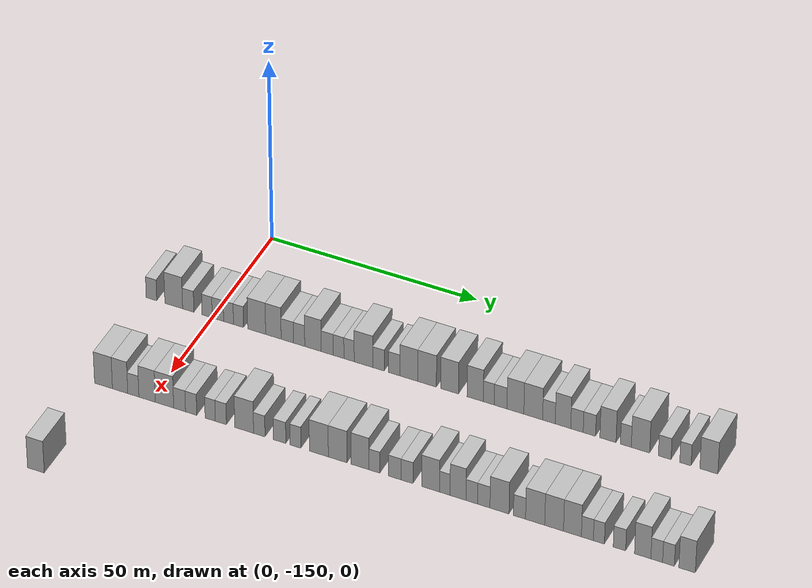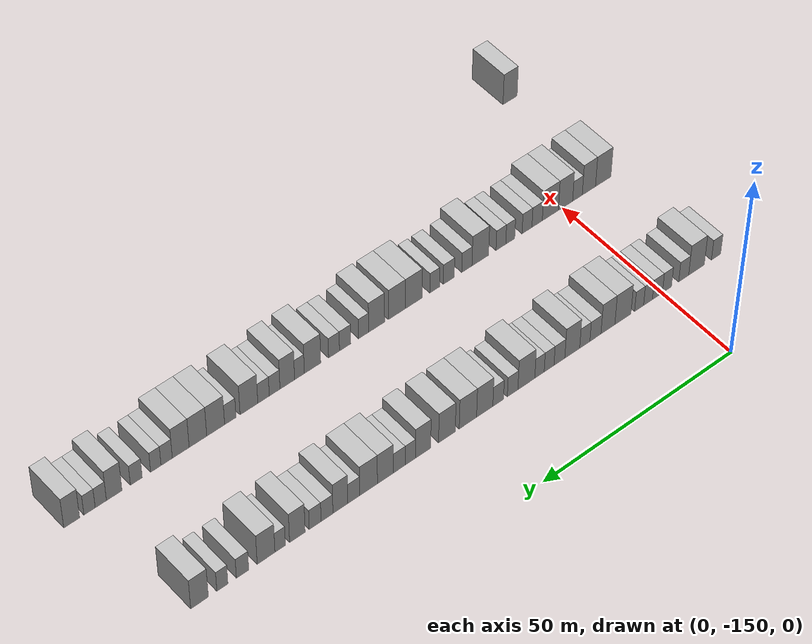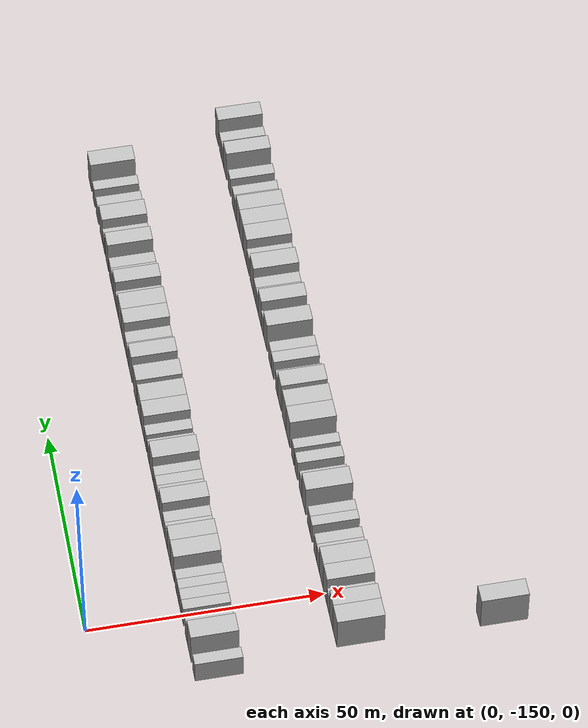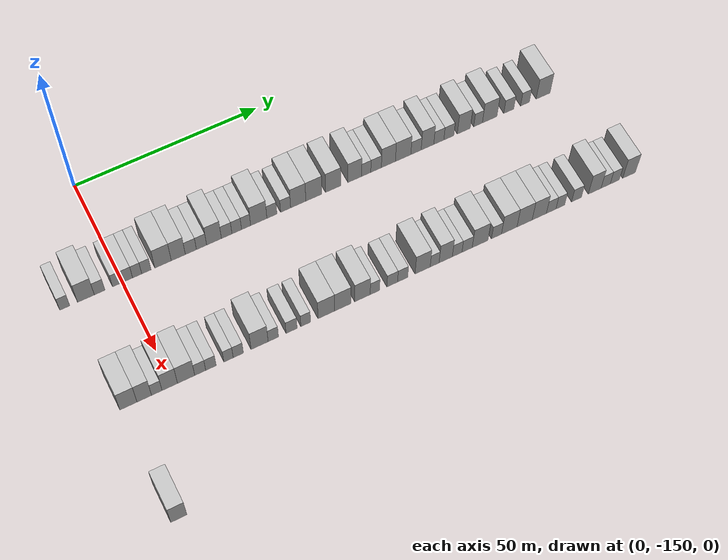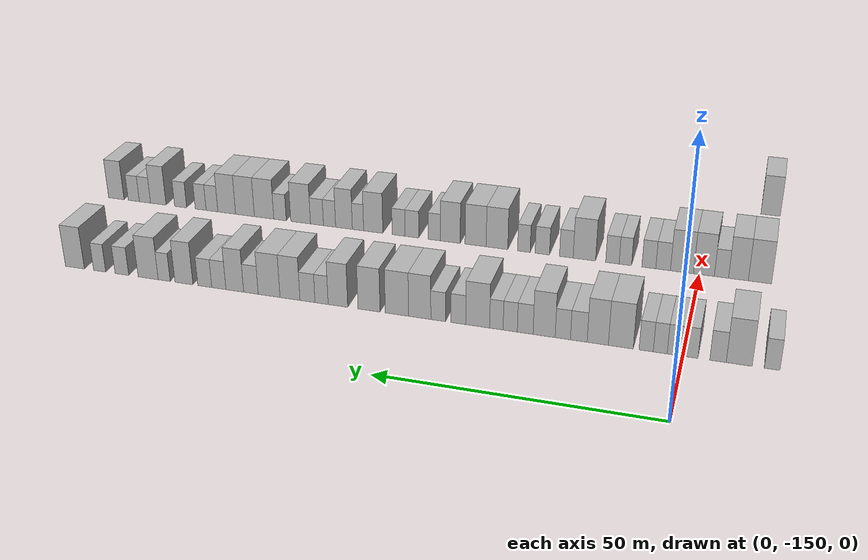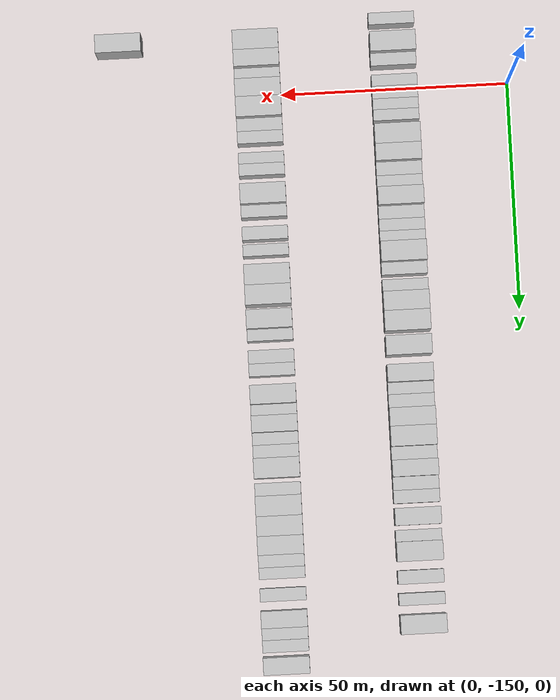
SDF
<sdf version="1.6">
 <world name="default">
  <model name="building_75">
   <static>1</static>
   <pose>25.0000 -164.9613 0 0.000000 0.000000 0.000000</pose>
   <link name="link">
    <pose>0 0 3.00 0 0 0</pose>
    <collision name="collision"><geometry><box><size>10.0000 2.5970 6.0000</size></box></geometry></collision>
    <visual name="visual">
     <cast_shadows>0</cast_shadows>
     <geometry><box><size>10.0000 2.5970 6.0000</size></box></geometry>
     <material>
      <script>
       <uri>model://HANNAS_wall/materials/scripts</uri>
       <uri>model://HANNAS_wall/materials/textures</uri>
       <name>vrc/HANNAS_wall</name>
      </script>
     </material>
    </visual>
   </link>
  </model>
  <model name="building_76">
   <static>1</static>
   <pose>25.0000 -159.4834 0 0.000000 0.000000 0.000000</pose>
   <link name="link">
    <pose>0 0 4.50 0 0 0</pose>
    <collision name="collision"><geometry><box><size>10.0000 4.3589 9.0000</size></box></geometry></collision>
    <visual name="visual">
     <cast_shadows>0</cast_shadows>
     <geometry><box><size>10.0000 4.3589 9.0000</size></box></geometry>
     <material>
      <script>
       <uri>model://HANNAS_wall/materials/scripts</uri>
       <uri>model://HANNAS_wall/materials/textures</uri>
       <name>vrc/HANNAS_wall</name>
      </script>
     </material>
    </visual>
   </link>
  </model>
  <model name="building_77">
   <static>1</static>
   <pose>25.0000 -155.9156 0 0.000000 0.000000 0.000000</pose>
   <link name="link">
    <pose>0 0 3.00 0 0 0</pose>
    <collision name="collision"><geometry><box><size>10.0000 2.7766 6.0000</size></box></geometry></collision>
    <visual name="visual">
     <cast_shadows>0</cast_shadows>
     <geometry><box><size>10.0000 2.7766 6.0000</size></box></geometry>
     <material>
      <script>
       <uri>model://HANNAS_wall/materials/scripts</uri>
       <uri>model://HANNAS_wall/materials/textures</uri>
       <name>vrc/HANNAS_wall</name>
      </script>
     </material>
    </visual>
   </link>
  </model>
  <model name="building_78">
   <static>1</static>
   <pose>25.0000 -151.2838 0 0.000000 0.000000 0.000000</pose>
   <link name="link">
    <pose>0 0 3.00 0 0 0</pose>
    <collision name="collision"><geometry><box><size>10.0000 2.4869 6.0000</size></box></geometry></collision>
    <visual name="visual">
     <cast_shadows>0</cast_shadows>
     <geometry><box><size>10.0000 2.4869 6.0000</size></box></geometry>
     <material>
      <script>
       <uri>model://HANNAS_wall/materials/scripts</uri>
       <uri>model://HANNAS_wall/materials/textures</uri>
       <name>vrc/HANNAS_wall</name>
      </script>
     </material>
    </visual>
   </link>
  </model>
  <model name="building_79">
   <static>1</static>
   <pose>25.0000 -148.6488 0 0.000000 0.000000 0.000000</pose>
   <link name="link">
    <pose>0 0 3.00 0 0 0</pose>
    <collision name="collision"><geometry><box><size>10.0000 2.7832 6.0000</size></box></geometry></collision>
    <visual name="visual">
     <cast_shadows>0</cast_shadows>
     <geometry><box><size>10.0000 2.7832 6.0000</size></box></geometry>
     <material>
      <script>
       <uri>model://HANNAS_wall/materials/scripts</uri>
       <uri>model://HANNAS_wall/materials/textures</uri>
       <name>vrc/HANNAS_wall</name>
      </script>
     </material>
    </visual>
   </link>
  </model>
  <model name="building_80">
   <static>1</static>
   <pose>25.0000 -146.0570 0 0.000000 0.000000 0.000000</pose>
   <link name="link">
    <pose>0 0 3.00 0 0 0</pose>
    <collision name="collision"><geometry><box><size>10.0000 2.4005 6.0000</size></box></geometry></collision>
    <visual name="visual">
     <cast_shadows>0</cast_shadows>
     <geometry><box><size>10.0000 2.4005 6.0000</size></box></geometry>
     <material>
      <script>
       <uri>model://HANNAS_wall/materials/scripts</uri>
       <uri>model://HANNAS_wall/materials/textures</uri>
       <name>vrc/HANNAS_wall</name>
      </script>
     </material>
    </visual>
   </link>
  </model>
  <model name="building_81">
   <static>1</static>
   <pose>25.0000 -143.6238 0 0.000000 0.000000 0.000000</pose>
   <link name="link">
    <pose>0 0 3.00 0 0 0</pose>
    <collision name="collision"><geometry><box><size>10.0000 2.4659 6.0000</size></box></geometry></collision>
    <visual name="visual">
     <cast_shadows>0</cast_shadows>
     <geometry><box><size>10.0000 2.4659 6.0000</size></box></geometry>
     <material>
      <script>
       <uri>model://HANNAS_wall/materials/scripts</uri>
       <uri>model://HANNAS_wall/materials/textures</uri>
       <name>vrc/HANNAS_wall</name>
      </script>
     </material>
    </visual>
   </link>
  </model>
  <model name="building_82">
   <static>1</static>
   <pose>25.0000 -139.2061 0 0.000000 0.000000 0.000000</pose>
   <link name="link">
    <pose>0 0 4.50 0 0 0</pose>
    <collision name="collision"><geometry><box><size>10.0000 4.3693 9.0000</size></box></geometry></collision>
    <visual name="visual">
     <cast_shadows>0</cast_shadows>
     <geometry><box><size>10.0000 4.3693 9.0000</size></box></geometry>
     <material>
      <script>
       <uri>model://HANNAS_wall/materials/scripts</uri>
       <uri>model://HANNAS_wall/materials/textures</uri>
       <name>vrc/HANNAS_wall</name>
      </script>
     </material>
    </visual>
   </link>
  </model>
  <model name="building_83">
   <static>1</static>
   <pose>25.0000 -135.1441 0 0.000000 0.000000 0.000000</pose>
   <link name="link">
    <pose>0 0 4.50 0 0 0</pose>
    <collision name="collision"><geometry><box><size>10.0000 3.7548 9.0000</size></box></geometry></collision>
    <visual name="visual">
     <cast_shadows>0</cast_shadows>
     <geometry><box><size>10.0000 3.7548 9.0000</size></box></geometry>
     <material>
      <script>
       <uri>model://HANNAS_wall/materials/scripts</uri>
       <uri>model://HANNAS_wall/materials/textures</uri>
       <name>vrc/HANNAS_wall</name>
      </script>
     </material>
    </visual>
   </link>
  </model>
  <model name="building_84">
   <static>1</static>
   <pose>25.0000 -131.7835 0 0.000000 0.000000 0.000000</pose>
   <link name="link">
    <pose>0 0 3.00 0 0 0</pose>
    <collision name="collision"><geometry><box><size>10.0000 2.9663 6.0000</size></box></geometry></collision>
    <visual name="visual">
     <cast_shadows>0</cast_shadows>
     <geometry><box><size>10.0000 2.9663 6.0000</size></box></geometry>
     <material>
      <script>
       <uri>model://HANNAS_wall/materials/scripts</uri>
       <uri>model://HANNAS_wall/materials/textures</uri>
       <name>vrc/HANNAS_wall</name>
      </script>
     </material>
    </visual>
   </link>
  </model>
  <model name="building_85">
   <static>1</static>
   <pose>25.0000 -128.9321 0 0.000000 0.000000 0.000000</pose>
   <link name="link">
    <pose>0 0 3.00 0 0 0</pose>
    <collision name="collision"><geometry><box><size>10.0000 2.7366 6.0000</size></box></geometry></collision>
    <visual name="visual">
     <cast_shadows>0</cast_shadows>
     <geometry><box><size>10.0000 2.7366 6.0000</size></box></geometry>
     <material>
      <script>
       <uri>model://HANNAS_wall/materials/scripts</uri>
       <uri>model://HANNAS_wall/materials/textures</uri>
       <name>vrc/HANNAS_wall</name>
      </script>
     </material>
    </visual>
   </link>
  </model>
  <model name="building_86">
   <static>1</static>
   <pose>25.0000 -125.5755 0 0.000000 0.000000 0.000000</pose>
   <link name="link">
    <pose>0 0 4.50 0 0 0</pose>
    <collision name="collision"><geometry><box><size>10.0000 3.9767 9.0000</size></box></geometry></collision>
    <visual name="visual">
     <cast_shadows>0</cast_shadows>
     <geometry><box><size>10.0000 3.9767 9.0000</size></box></geometry>
     <material>
      <script>
       <uri>model://HANNAS_wall/materials/scripts</uri>
       <uri>model://HANNAS_wall/materials/textures</uri>
       <name>vrc/HANNAS_wall</name>
      </script>
     </material>
    </visual>
   </link>
  </model>
  <model name="building_87">
   <static>1</static>
   <pose>25.0000 -122.1557 0 0.000000 0.000000 0.000000</pose>
   <link name="link">
    <pose>0 0 3.00 0 0 0</pose>
    <collision name="collision"><geometry><box><size>10.0000 2.8629 6.0000</size></box></geometry></collision>
    <visual name="visual">
     <cast_shadows>0</cast_shadows>
     <geometry><box><size>10.0000 2.8629 6.0000</size></box></geometry>
     <material>
      <script>
       <uri>model://HANNAS_wall/materials/scripts</uri>
       <uri>model://HANNAS_wall/materials/textures</uri>
       <name>vrc/HANNAS_wall</name>
      </script>
     </material>
    </visual>
   </link>
  </model>
  <model name="building_88">
   <static>1</static>
   <pose>25.0000 -119.4282 0 0.000000 0.000000 0.000000</pose>
   <link name="link">
    <pose>0 0 3.00 0 0 0</pose>
    <collision name="collision"><geometry><box><size>10.0000 2.5920 6.0000</size></box></geometry></collision>
    <visual name="visual">
     <cast_shadows>0</cast_shadows>
     <geometry><box><size>10.0000 2.5920 6.0000</size></box></geometry>
     <material>
      <script>
       <uri>model://HANNAS_wall/materials/scripts</uri>
       <uri>model://HANNAS_wall/materials/textures</uri>
       <name>vrc/HANNAS_wall</name>
      </script>
     </material>
    </visual>
   </link>
  </model>
  <model name="building_89">
   <static>1</static>
   <pose>25.0000 -116.8933 0 0.000000 0.000000 0.000000</pose>
   <link name="link">
    <pose>0 0 3.00 0 0 0</pose>
    <collision name="collision"><geometry><box><size>10.0000 2.4778 6.0000</size></box></geometry></collision>
    <visual name="visual">
     <cast_shadows>0</cast_shadows>
     <geometry><box><size>10.0000 2.4778 6.0000</size></box></geometry>
     <material>
      <script>
       <uri>model://HANNAS_wall/materials/scripts</uri>
       <uri>model://HANNAS_wall/materials/textures</uri>
       <name>vrc/HANNAS_wall</name>
      </script>
     </material>
    </visual>
   </link>
  </model>
  <model name="building_90">
   <static>1</static>
   <pose>25.0000 -113.4386 0 0.000000 0.000000 0.000000</pose>
   <link name="link">
    <pose>0 0 4.50 0 0 0</pose>
    <collision name="collision"><geometry><box><size>10.0000 4.4316 9.0000</size></box></geometry></collision>
    <visual name="visual">
     <cast_shadows>0</cast_shadows>
     <geometry><box><size>10.0000 4.4316 9.0000</size></box></geometry>
     <material>
      <script>
       <uri>model://HANNAS_wall/materials/scripts</uri>
       <uri>model://HANNAS_wall/materials/textures</uri>
       <name>vrc/HANNAS_wall</name>
      </script>
     </material>
    </visual>
   </link>
  </model>
  <model name="building_91">
   <static>1</static>
   <pose>25.0000 -109.8458 0 0.000000 0.000000 0.000000</pose>
   <link name="link">
    <pose>0 0 3.00 0 0 0</pose>
    <collision name="collision"><geometry><box><size>10.0000 2.7541 6.0000</size></box></geometry></collision>
    <visual name="visual">
     <cast_shadows>0</cast_shadows>
     <geometry><box><size>10.0000 2.7541 6.0000</size></box></geometry>
     <material>
      <script>
       <uri>model://HANNAS_wall/materials/scripts</uri>
       <uri>model://HANNAS_wall/materials/textures</uri>
       <name>vrc/HANNAS_wall</name>
      </script>
     </material>
    </visual>
   </link>
  </model>
  <model name="building_92">
   <static>1</static>
   <pose>25.0000 -106.0870 0 0.000000 0.000000 0.000000</pose>
   <link name="link">
    <pose>0 0 3.00 0 0 0</pose>
    <collision name="collision"><geometry><box><size>10.0000 2.7636 6.0000</size></box></geometry></collision>
    <visual name="visual">
     <cast_shadows>0</cast_shadows>
     <geometry><box><size>10.0000 2.7636 6.0000</size></box></geometry>
     <material>
      <script>
       <uri>model://HANNAS_wall/materials/scripts</uri>
       <uri>model://HANNAS_wall/materials/textures</uri>
       <name>vrc/HANNAS_wall</name>
      </script>
     </material>
    </visual>
   </link>
  </model>
  <model name="building_93">
   <static>1</static>
   <pose>25.0000 -102.6037 0 0.000000 0.000000 0.000000</pose>
   <link name="link">
    <pose>0 0 4.50 0 0 0</pose>
    <collision name="collision"><geometry><box><size>10.0000 4.2029 9.0000</size></box></geometry></collision>
    <visual name="visual">
     <cast_shadows>0</cast_shadows>
     <geometry><box><size>10.0000 4.2029 9.0000</size></box></geometry>
     <material>
      <script>
       <uri>model://HANNAS_wall/materials/scripts</uri>
       <uri>model://HANNAS_wall/materials/textures</uri>
       <name>vrc/HANNAS_wall</name>
      </script>
     </material>
    </visual>
   </link>
  </model>
  <model name="building_94">
   <static>1</static>
   <pose>25.0000 -98.2741 0 0.000000 0.000000 0.000000</pose>
   <link name="link">
    <pose>0 0 4.50 0 0 0</pose>
    <collision name="collision"><geometry><box><size>10.0000 4.4564 9.0000</size></box></geometry></collision>
    <visual name="visual">
     <cast_shadows>0</cast_shadows>
     <geometry><box><size>10.0000 4.4564 9.0000</size></box></geometry>
     <material>
      <script>
       <uri>model://HANNAS_wall/materials/scripts</uri>
       <uri>model://HANNAS_wall/materials/textures</uri>
       <name>vrc/HANNAS_wall</name>
      </script>
     </material>
    </visual>
   </link>
  </model>
  <model name="building_95">
   <static>1</static>
   <pose>25.0000 -92.9172 0 0.000000 0.000000 0.000000</pose>
   <link name="link">
    <pose>0 0 4.50 0 0 0</pose>
    <collision name="collision"><geometry><box><size>10.0000 4.2573 9.0000</size></box></geometry></collision>
    <visual name="visual">
     <cast_shadows>0</cast_shadows>
     <geometry><box><size>10.0000 4.2573 9.0000</size></box></geometry>
     <material>
      <script>
       <uri>model://HANNAS_wall/materials/scripts</uri>
       <uri>model://HANNAS_wall/materials/textures</uri>
       <name>vrc/HANNAS_wall</name>
      </script>
     </material>
    </visual>
   </link>
  </model>
  <model name="building_96">
   <static>1</static>
   <pose>25.0000 -86.8707 0 0.000000 0.000000 0.000000</pose>
   <link name="link">
    <pose>0 0 4.50 0 0 0</pose>
    <collision name="collision"><geometry><box><size>10.0000 3.8357 9.0000</size></box></geometry></collision>
    <visual name="visual">
     <cast_shadows>0</cast_shadows>
     <geometry><box><size>10.0000 3.8357 9.0000</size></box></geometry>
     <material>
      <script>
       <uri>model://HANNAS_wall/materials/scripts</uri>
       <uri>model://HANNAS_wall/materials/textures</uri>
       <name>vrc/HANNAS_wall</name>
      </script>
     </material>
    </visual>
   </link>
  </model>
  <model name="building_97">
   <static>1</static>
   <pose>25.0000 -83.6603 0 0.000000 0.000000 0.000000</pose>
   <link name="link">
    <pose>0 0 3.00 0 0 0</pose>
    <collision name="collision"><geometry><box><size>10.0000 2.5851 6.0000</size></box></geometry></collision>
    <visual name="visual">
     <cast_shadows>0</cast_shadows>
     <geometry><box><size>10.0000 2.5851 6.0000</size></box></geometry>
     <material>
      <script>
       <uri>model://HANNAS_wall/materials/scripts</uri>
       <uri>model://HANNAS_wall/materials/textures</uri>
       <name>vrc/HANNAS_wall</name>
      </script>
     </material>
    </visual>
   </link>
  </model>
  <model name="building_98">
   <static>1</static>
   <pose>25.0000 -80.8794 0 0.000000 0.000000 0.000000</pose>
   <link name="link">
    <pose>0 0 3.00 0 0 0</pose>
    <collision name="collision"><geometry><box><size>10.0000 2.9766 6.0000</size></box></geometry></collision>
    <visual name="visual">
     <cast_shadows>0</cast_shadows>
     <geometry><box><size>10.0000 2.9766 6.0000</size></box></geometry>
     <material>
      <script>
       <uri>model://HANNAS_wall/materials/scripts</uri>
       <uri>model://HANNAS_wall/materials/textures</uri>
       <name>vrc/HANNAS_wall</name>
      </script>
     </material>
    </visual>
   </link>
  </model>
  <model name="building_99">
   <static>1</static>
   <pose>25.0000 -77.4008 0 0.000000 0.000000 0.000000</pose>
   <link name="link">
    <pose>0 0 4.50 0 0 0</pose>
    <collision name="collision"><geometry><box><size>10.0000 3.9807 9.0000</size></box></geometry></collision>
    <visual name="visual">
     <cast_shadows>0</cast_shadows>
     <geometry><box><size>10.0000 3.9807 9.0000</size></box></geometry>
     <material>
      <script>
       <uri>model://HANNAS_wall/materials/scripts</uri>
       <uri>model://HANNAS_wall/materials/textures</uri>
       <name>vrc/HANNAS_wall</name>
      </script>
     </material>
    </visual>
   </link>
  </model>
  <model name="building_100">
   <static>1</static>
   <pose>25.0000 -73.2152 0 0.000000 0.000000 0.000000</pose>
   <link name="link">
    <pose>0 0 4.50 0 0 0</pose>
    <collision name="collision"><geometry><box><size>10.0000 4.3904 9.0000</size></box></geometry></collision>
    <visual name="visual">
     <cast_shadows>0</cast_shadows>
     <geometry><box><size>10.0000 4.3904 9.0000</size></box></geometry>
     <material>
      <script>
       <uri>model://HANNAS_wall/materials/scripts</uri>
       <uri>model://HANNAS_wall/materials/textures</uri>
       <name>vrc/HANNAS_wall</name>
      </script>
     </material>
    </visual>
   </link>
  </model>
  <model name="building_101">
   <static>1</static>
   <pose>25.0000 -69.5446 0 0.000000 0.000000 0.000000</pose>
   <link name="link">
    <pose>0 0 3.00 0 0 0</pose>
    <collision name="collision"><geometry><box><size>10.0000 2.9508 6.0000</size></box></geometry></collision>
    <visual name="visual">
     <cast_shadows>0</cast_shadows>
     <geometry><box><size>10.0000 2.9508 6.0000</size></box></geometry>
     <material>
      <script>
       <uri>model://HANNAS_wall/materials/scripts</uri>
       <uri>model://HANNAS_wall/materials/textures</uri>
       <name>vrc/HANNAS_wall</name>
      </script>
     </material>
    </visual>
   </link>
  </model>
  <model name="building_102">
   <static>1</static>
   <pose>25.0000 -66.2577 0 0.000000 0.000000 0.000000</pose>
   <link name="link">
    <pose>0 0 4.50 0 0 0</pose>
    <collision name="collision"><geometry><box><size>10.0000 3.6230 9.0000</size></box></geometry></collision>
    <visual name="visual">
     <cast_shadows>0</cast_shadows>
     <geometry><box><size>10.0000 3.6230 9.0000</size></box></geometry>
     <material>
      <script>
       <uri>model://HANNAS_wall/materials/scripts</uri>
       <uri>model://HANNAS_wall/materials/textures</uri>
       <name>vrc/HANNAS_wall</name>
      </script>
     </material>
    </visual>
   </link>
  </model>
  <model name="building_103">
   <static>1</static>
   <pose>25.0000 -62.9959 0 0.000000 0.000000 0.000000</pose>
   <link name="link">
    <pose>0 0 3.00 0 0 0</pose>
    <collision name="collision"><geometry><box><size>10.0000 2.9005 6.0000</size></box></geometry></collision>
    <visual name="visual">
     <cast_shadows>0</cast_shadows>
     <geometry><box><size>10.0000 2.9005 6.0000</size></box></geometry>
     <material>
      <script>
       <uri>model://HANNAS_wall/materials/scripts</uri>
       <uri>model://HANNAS_wall/materials/textures</uri>
       <name>vrc/HANNAS_wall</name>
      </script>
     </material>
    </visual>
   </link>
  </model>
  <model name="building_104">
   <static>1</static>
   <pose>25.0000 -60.1058 0 0.000000 0.000000 0.000000</pose>
   <link name="link">
    <pose>0 0 3.00 0 0 0</pose>
    <collision name="collision"><geometry><box><size>10.0000 2.8798 6.0000</size></box></geometry></collision>
    <visual name="visual">
     <cast_shadows>0</cast_shadows>
     <geometry><box><size>10.0000 2.8798 6.0000</size></box></geometry>
     <material>
      <script>
       <uri>model://HANNAS_wall/materials/scripts</uri>
       <uri>model://HANNAS_wall/materials/textures</uri>
       <name>vrc/HANNAS_wall</name>
      </script>
     </material>
    </visual>
   </link>
  </model>
  <model name="building_105">
   <static>1</static>
   <pose>25.0000 -55.7916 0 0.000000 0.000000 0.000000</pose>
   <link name="link">
    <pose>0 0 4.50 0 0 0</pose>
    <collision name="collision"><geometry><box><size>10.0000 3.7487 9.0000</size></box></geometry></collision>
    <visual name="visual">
     <cast_shadows>0</cast_shadows>
     <geometry><box><size>10.0000 3.7487 9.0000</size></box></geometry>
     <material>
      <script>
       <uri>model://HANNAS_wall/materials/scripts</uri>
       <uri>model://HANNAS_wall/materials/textures</uri>
       <name>vrc/HANNAS_wall</name>
      </script>
     </material>
    </visual>
   </link>
  </model>
  <model name="building_106">
   <static>1</static>
   <pose>25.0000 -51.6585 0 0.000000 0.000000 0.000000</pose>
   <link name="link">
    <pose>0 0 3.00 0 0 0</pose>
    <collision name="collision"><geometry><box><size>10.0000 2.5175 6.0000</size></box></geometry></collision>
    <visual name="visual">
     <cast_shadows>0</cast_shadows>
     <geometry><box><size>10.0000 2.5175 6.0000</size></box></geometry>
     <material>
      <script>
       <uri>model://HANNAS_wall/materials/scripts</uri>
       <uri>model://HANNAS_wall/materials/textures</uri>
       <name>vrc/HANNAS_wall</name>
      </script>
     </material>
    </visual>
   </link>
  </model>
  <model name="building_107">
   <static>1</static>
   <pose>25.0000 -48.2748 0 0.000000 0.000000 0.000000</pose>
   <link name="link">
    <pose>0 0 4.50 0 0 0</pose>
    <collision name="collision"><geometry><box><size>10.0000 4.2500 9.0000</size></box></geometry></collision>
    <visual name="visual">
     <cast_shadows>0</cast_shadows>
     <geometry><box><size>10.0000 4.2500 9.0000</size></box></geometry>
     <material>
      <script>
       <uri>model://HANNAS_wall/materials/scripts</uri>
       <uri>model://HANNAS_wall/materials/textures</uri>
       <name>vrc/HANNAS_wall</name>
      </script>
     </material>
    </visual>
   </link>
  </model>
  <model name="building_108">
   <static>1</static>
   <pose>25.0000 -42.6852 0 0.000000 0.000000 0.000000</pose>
   <link name="link">
    <pose>0 0 3.00 0 0 0</pose>
    <collision name="collision"><geometry><box><size>10.0000 2.9294 6.0000</size></box></geometry></collision>
    <visual name="visual">
     <cast_shadows>0</cast_shadows>
     <geometry><box><size>10.0000 2.9294 6.0000</size></box></geometry>
     <material>
      <script>
       <uri>model://HANNAS_wall/materials/scripts</uri>
       <uri>model://HANNAS_wall/materials/textures</uri>
       <name>vrc/HANNAS_wall</name>
      </script>
     </material>
    </visual>
   </link>
  </model>
  <model name="building_109">
   <static>1</static>
   <pose>25.0000 -37.9173 0 0.000000 0.000000 0.000000</pose>
   <link name="link">
    <pose>0 0 3.00 0 0 0</pose>
    <collision name="collision"><geometry><box><size>10.0000 2.6063 6.0000</size></box></geometry></collision>
    <visual name="visual">
     <cast_shadows>0</cast_shadows>
     <geometry><box><size>10.0000 2.6063 6.0000</size></box></geometry>
     <material>
      <script>
       <uri>model://HANNAS_wall/materials/scripts</uri>
       <uri>model://HANNAS_wall/materials/textures</uri>
       <name>vrc/HANNAS_wall</name>
      </script>
     </material>
    </visual>
   </link>
  </model>
  <model name="building_110">
   <static>1</static>
   <pose>25.0000 -32.5534 0 0.000000 0.000000 0.000000</pose>
   <link name="link">
    <pose>0 0 4.50 0 0 0</pose>
    <collision name="collision"><geometry><box><size>10.0000 4.1215 9.0000</size></box></geometry></collision>
    <visual name="visual">
     <cast_shadows>0</cast_shadows>
     <geometry><box><size>10.0000 4.1215 9.0000</size></box></geometry>
     <material>
      <script>
       <uri>model://HANNAS_wall/materials/scripts</uri>
       <uri>model://HANNAS_wall/materials/textures</uri>
       <name>vrc/HANNAS_wall</name>
      </script>
     </material>
    </visual>
   </link>
  </model>
  <model name="building_310">
   <static>1</static>
   <pose>55.0000 -161.3412 0 0.000000 0.000000 0.000000</pose>
   <link name="link">
    <pose>0 0 4.50 0 0 0</pose>
    <collision name="collision"><geometry><box><size>10.0000 4.3286 9.0000</size></box></geometry></collision>
    <visual name="visual">
     <cast_shadows>0</cast_shadows>
     <geometry><box><size>10.0000 4.3286 9.0000</size></box></geometry>
     <material>
      <script>
       <uri>model://HANNAS_wall/materials/scripts</uri>
       <uri>model://HANNAS_wall/materials/textures</uri>
       <name>vrc/HANNAS_wall</name>
      </script>
     </material>
    </visual>
   </link>
  </model>
  <model name="building_311">
   <static>1</static>
   <pose>55.0000 -157.3208 0 0.000000 0.000000 0.000000</pose>
   <link name="link">
    <pose>0 0 4.50 0 0 0</pose>
    <collision name="collision"><geometry><box><size>10.0000 3.7121 9.0000</size></box></geometry></collision>
    <visual name="visual">
     <cast_shadows>0</cast_shadows>
     <geometry><box><size>10.0000 3.7121 9.0000</size></box></geometry>
     <material>
      <script>
       <uri>model://HANNAS_wall/materials/scripts</uri>
       <uri>model://HANNAS_wall/materials/textures</uri>
       <name>vrc/HANNAS_wall</name>
      </script>
     </material>
    </visual>
   </link>
  </model>
  <model name="building_312">
   <static>1</static>
   <pose>55.0000 -154.1229 0 0.000000 0.000000 0.000000</pose>
   <link name="link">
    <pose>0 0 3.00 0 0 0</pose>
    <collision name="collision"><geometry><box><size>10.0000 2.6838 6.0000</size></box></geometry></collision>
    <visual name="visual">
     <cast_shadows>0</cast_shadows>
     <geometry><box><size>10.0000 2.6838 6.0000</size></box></geometry>
     <material>
      <script>
       <uri>model://HANNAS_wall/materials/scripts</uri>
       <uri>model://HANNAS_wall/materials/textures</uri>
       <name>vrc/HANNAS_wall</name>
      </script>
     </material>
    </visual>
   </link>
  </model>
  <model name="building_313">
   <static>1</static>
   <pose>55.0000 -150.8002 0 0.000000 0.000000 0.000000</pose>
   <link name="link">
    <pose>0 0 4.50 0 0 0</pose>
    <collision name="collision"><geometry><box><size>10.0000 3.9616 9.0000</size></box></geometry></collision>
    <visual name="visual">
     <cast_shadows>0</cast_shadows>
     <geometry><box><size>10.0000 3.9616 9.0000</size></box></geometry>
     <material>
      <script>
       <uri>model://HANNAS_wall/materials/scripts</uri>
       <uri>model://HANNAS_wall/materials/textures</uri>
       <name>vrc/HANNAS_wall</name>
      </script>
     </material>
    </visual>
   </link>
  </model>
  <model name="building_314">
   <static>1</static>
   <pose>55.0000 -146.6014 0 0.000000 0.000000 0.000000</pose>
   <link name="link">
    <pose>0 0 4.50 0 0 0</pose>
    <collision name="collision"><geometry><box><size>10.0000 4.4361 9.0000</size></box></geometry></collision>
    <visual name="visual">
     <cast_shadows>0</cast_shadows>
     <geometry><box><size>10.0000 4.4361 9.0000</size></box></geometry>
     <material>
      <script>
       <uri>model://HANNAS_wall/materials/scripts</uri>
       <uri>model://HANNAS_wall/materials/textures</uri>
       <name>vrc/HANNAS_wall</name>
      </script>
     </material>
    </visual>
   </link>
  </model>
  <model name="building_315">
   <static>1</static>
   <pose>55.0000 -142.9675 0 0.000000 0.000000 0.000000</pose>
   <link name="link">
    <pose>0 0 3.00 0 0 0</pose>
    <collision name="collision"><geometry><box><size>10.0000 2.8315 6.0000</size></box></geometry></collision>
    <visual name="visual">
     <cast_shadows>0</cast_shadows>
     <geometry><box><size>10.0000 2.8315 6.0000</size></box></geometry>
     <material>
      <script>
       <uri>model://HANNAS_wall/materials/scripts</uri>
       <uri>model://HANNAS_wall/materials/textures</uri>
       <name>vrc/HANNAS_wall</name>
      </script>
     </material>
    </visual>
   </link>
  </model>
  <model name="building_316">
   <static>1</static>
   <pose>55.0000 -140.1980 0 0.000000 0.000000 0.000000</pose>
   <link name="link">
    <pose>0 0 3.00 0 0 0</pose>
    <collision name="collision"><geometry><box><size>10.0000 2.7076 6.0000</size></box></geometry></collision>
    <visual name="visual">
     <cast_shadows>0</cast_shadows>
     <geometry><box><size>10.0000 2.7076 6.0000</size></box></geometry>
     <material>
      <script>
       <uri>model://HANNAS_wall/materials/scripts</uri>
       <uri>model://HANNAS_wall/materials/textures</uri>
       <name>vrc/HANNAS_wall</name>
      </script>
     </material>
    </visual>
   </link>
  </model>
  <model name="building_317">
   <static>1</static>
   <pose>55.0000 -135.6255 0 0.000000 0.000000 0.000000</pose>
   <link name="link">
    <pose>0 0 3.00 0 0 0</pose>
    <collision name="collision"><geometry><box><size>10.0000 2.4374 6.0000</size></box></geometry></collision>
    <visual name="visual">
     <cast_shadows>0</cast_shadows>
     <geometry><box><size>10.0000 2.4374 6.0000</size></box></geometry>
     <material>
      <script>
       <uri>model://HANNAS_wall/materials/scripts</uri>
       <uri>model://HANNAS_wall/materials/textures</uri>
       <name>vrc/HANNAS_wall</name>
      </script>
     </material>
    </visual>
   </link>
  </model>
  <model name="building_318">
   <static>1</static>
   <pose>55.0000 -133.0808 0 0.000000 0.000000 0.000000</pose>
   <link name="link">
    <pose>0 0 3.00 0 0 0</pose>
    <collision name="collision"><geometry><box><size>10.0000 2.6520 6.0000</size></box></geometry></collision>
    <visual name="visual">
     <cast_shadows>0</cast_shadows>
     <geometry><box><size>10.0000 2.6520 6.0000</size></box></geometry>
     <material>
      <script>
       <uri>model://HANNAS_wall/materials/scripts</uri>
       <uri>model://HANNAS_wall/materials/textures</uri>
       <name>vrc/HANNAS_wall</name>
      </script>
     </material>
    </visual>
   </link>
  </model>
  <model name="building_319">
   <static>1</static>
   <pose>55.0000 -127.5197 0 0.000000 0.000000 0.000000</pose>
   <link name="link">
    <pose>0 0 4.50 0 0 0</pose>
    <collision name="collision"><geometry><box><size>10.0000 4.4703 9.0000</size></box></geometry></collision>
    <visual name="visual">
     <cast_shadows>0</cast_shadows>
     <geometry><box><size>10.0000 4.4703 9.0000</size></box></geometry>
     <material>
      <script>
       <uri>model://HANNAS_wall/materials/scripts</uri>
       <uri>model://HANNAS_wall/materials/textures</uri>
       <name>vrc/HANNAS_wall</name>
      </script>
     </material>
    </visual>
   </link>
  </model>
  <model name="building_320">
   <static>1</static>
   <pose>55.0000 -123.9197 0 0.000000 0.000000 0.000000</pose>
   <link name="link">
    <pose>0 0 3.00 0 0 0</pose>
    <collision name="collision"><geometry><box><size>10.0000 2.7296 6.0000</size></box></geometry></collision>
    <visual name="visual">
     <cast_shadows>0</cast_shadows>
     <geometry><box><size>10.0000 2.7296 6.0000</size></box></geometry>
     <material>
      <script>
       <uri>model://HANNAS_wall/materials/scripts</uri>
       <uri>model://HANNAS_wall/materials/textures</uri>
       <name>vrc/HANNAS_wall</name>
      </script>
     </material>
    </visual>
   </link>
  </model>
  <model name="building_321">
   <static>1</static>
   <pose>55.0000 -119.0917 0 0.000000 0.000000 0.000000</pose>
   <link name="link">
    <pose>0 0 3.00 0 0 0</pose>
    <collision name="collision"><geometry><box><size>10.0000 2.9264 6.0000</size></box></geometry></collision>
    <visual name="visual">
     <cast_shadows>0</cast_shadows>
     <geometry><box><size>10.0000 2.9264 6.0000</size></box></geometry>
     <material>
      <script>
       <uri>model://HANNAS_wall/materials/scripts</uri>
       <uri>model://HANNAS_wall/materials/textures</uri>
       <name>vrc/HANNAS_wall</name>
      </script>
     </material>
    </visual>
   </link>
  </model>
  <model name="building_322">
   <static>1</static>
   <pose>55.0000 -115.3417 0 0.000000 0.000000 0.000000</pose>
   <link name="link">
    <pose>0 0 3.00 0 0 0</pose>
    <collision name="collision"><geometry><box><size>10.0000 2.5736 6.0000</size></box></geometry></collision>
    <visual name="visual">
     <cast_shadows>0</cast_shadows>
     <geometry><box><size>10.0000 2.5736 6.0000</size></box></geometry>
     <material>
      <script>
       <uri>model://HANNAS_wall/materials/scripts</uri>
       <uri>model://HANNAS_wall/materials/textures</uri>
       <name>vrc/HANNAS_wall</name>
      </script>
     </material>
    </visual>
   </link>
  </model>
  <model name="building_323">
   <static>1</static>
   <pose>55.0000 -109.8260 0 0.000000 0.000000 0.000000</pose>
   <link name="link">
    <pose>0 0 4.50 0 0 0</pose>
    <collision name="collision"><geometry><box><size>10.0000 4.4579 9.0000</size></box></geometry></collision>
    <visual name="visual">
     <cast_shadows>0</cast_shadows>
     <geometry><box><size>10.0000 4.4579 9.0000</size></box></geometry>
     <material>
      <script>
       <uri>model://HANNAS_wall/materials/scripts</uri>
       <uri>model://HANNAS_wall/materials/textures</uri>
       <name>vrc/HANNAS_wall</name>
      </script>
     </material>
    </visual>
   </link>
  </model>
  <model name="building_324">
   <static>1</static>
   <pose>55.0000 -105.4024 0 0.000000 0.000000 0.000000</pose>
   <link name="link">
    <pose>0 0 4.50 0 0 0</pose>
    <collision name="collision"><geometry><box><size>10.0000 4.3893 9.0000</size></box></geometry></collision>
    <visual name="visual">
     <cast_shadows>0</cast_shadows>
     <geometry><box><size>10.0000 4.3893 9.0000</size></box></geometry>
     <material>
      <script>
       <uri>model://HANNAS_wall/materials/scripts</uri>
       <uri>model://HANNAS_wall/materials/textures</uri>
       <name>vrc/HANNAS_wall</name>
      </script>
     </material>
    </visual>
   </link>
  </model>
  <model name="building_325">
   <static>1</static>
   <pose>55.0000 -100.1222 0 0.000000 0.000000 0.000000</pose>
   <link name="link">
    <pose>0 0 4.50 0 0 0</pose>
    <collision name="collision"><geometry><box><size>10.0000 4.1712 9.0000</size></box></geometry></collision>
    <visual name="visual">
     <cast_shadows>0</cast_shadows>
     <geometry><box><size>10.0000 4.1712 9.0000</size></box></geometry>
     <material>
      <script>
       <uri>model://HANNAS_wall/materials/scripts</uri>
       <uri>model://HANNAS_wall/materials/textures</uri>
       <name>vrc/HANNAS_wall</name>
      </script>
     </material>
    </visual>
   </link>
  </model>
  <model name="building_326">
   <static>1</static>
   <pose>55.0000 -96.7581 0 0.000000 0.000000 0.000000</pose>
   <link name="link">
    <pose>0 0 3.00 0 0 0</pose>
    <collision name="collision"><geometry><box><size>10.0000 2.5570 6.0000</size></box></geometry></collision>
    <visual name="visual">
     <cast_shadows>0</cast_shadows>
     <geometry><box><size>10.0000 2.5570 6.0000</size></box></geometry>
     <material>
      <script>
       <uri>model://HANNAS_wall/materials/scripts</uri>
       <uri>model://HANNAS_wall/materials/textures</uri>
       <name>vrc/HANNAS_wall</name>
      </script>
     </material>
    </visual>
   </link>
  </model>
  <model name="building_327">
   <static>1</static>
   <pose>55.0000 -92.0250 0 0.000000 0.000000 0.000000</pose>
   <link name="link">
    <pose>0 0 3.00 0 0 0</pose>
    <collision name="collision"><geometry><box><size>10.0000 2.9093 6.0000</size></box></geometry></collision>
    <visual name="visual">
     <cast_shadows>0</cast_shadows>
     <geometry><box><size>10.0000 2.9093 6.0000</size></box></geometry>
     <material>
      <script>
       <uri>model://HANNAS_wall/materials/scripts</uri>
       <uri>model://HANNAS_wall/materials/textures</uri>
       <name>vrc/HANNAS_wall</name>
      </script>
     </material>
    </visual>
   </link>
  </model>
  <model name="building_328">
   <static>1</static>
   <pose>55.0000 -89.1795 0 0.000000 0.000000 0.000000</pose>
   <link name="link">
    <pose>0 0 3.00 0 0 0</pose>
    <collision name="collision"><geometry><box><size>10.0000 2.7817 6.0000</size></box></geometry></collision>
    <visual name="visual">
     <cast_shadows>0</cast_shadows>
     <geometry><box><size>10.0000 2.7817 6.0000</size></box></geometry>
     <material>
      <script>
       <uri>model://HANNAS_wall/materials/scripts</uri>
       <uri>model://HANNAS_wall/materials/textures</uri>
       <name>vrc/HANNAS_wall</name>
      </script>
     </material>
    </visual>
   </link>
  </model>
  <model name="building_329">
   <static>1</static>
   <pose>55.0000 -83.7100 0 0.000000 0.000000 0.000000</pose>
   <link name="link">
    <pose>0 0 4.50 0 0 0</pose>
    <collision name="collision"><geometry><box><size>10.0000 4.1573 9.0000</size></box></geometry></collision>
    <visual name="visual">
     <cast_shadows>0</cast_shadows>
     <geometry><box><size>10.0000 4.1573 9.0000</size></box></geometry>
     <material>
      <script>
       <uri>model://HANNAS_wall/materials/scripts</uri>
       <uri>model://HANNAS_wall/materials/textures</uri>
       <name>vrc/HANNAS_wall</name>
      </script>
     </material>
    </visual>
   </link>
  </model>
  <model name="building_330">
   <static>1</static>
   <pose>55.0000 -80.4043 0 0.000000 0.000000 0.000000</pose>
   <link name="link">
    <pose>0 0 3.00 0 0 0</pose>
    <collision name="collision"><geometry><box><size>10.0000 2.4541 6.0000</size></box></geometry></collision>
    <visual name="visual">
     <cast_shadows>0</cast_shadows>
     <geometry><box><size>10.0000 2.4541 6.0000</size></box></geometry>
     <material>
      <script>
       <uri>model://HANNAS_wall/materials/scripts</uri>
       <uri>model://HANNAS_wall/materials/textures</uri>
       <name>vrc/HANNAS_wall</name>
      </script>
     </material>
    </visual>
   </link>
  </model>
  <model name="building_331">
   <static>1</static>
   <pose>55.0000 -77.3418 0 0.000000 0.000000 0.000000</pose>
   <link name="link">
    <pose>0 0 4.50 0 0 0</pose>
    <collision name="collision"><geometry><box><size>10.0000 3.6709 9.0000</size></box></geometry></collision>
    <visual name="visual">
     <cast_shadows>0</cast_shadows>
     <geometry><box><size>10.0000 3.6709 9.0000</size></box></geometry>
     <material>
      <script>
       <uri>model://HANNAS_wall/materials/scripts</uri>
       <uri>model://HANNAS_wall/materials/textures</uri>
       <name>vrc/HANNAS_wall</name>
      </script>
     </material>
    </visual>
   </link>
  </model>
  <model name="building_332">
   <static>1</static>
   <pose>55.0000 -74.1708 0 0.000000 0.000000 0.000000</pose>
   <link name="link">
    <pose>0 0 3.00 0 0 0</pose>
    <collision name="collision"><geometry><box><size>10.0000 2.6711 6.0000</size></box></geometry></collision>
    <visual name="visual">
     <cast_shadows>0</cast_shadows>
     <geometry><box><size>10.0000 2.6711 6.0000</size></box></geometry>
     <material>
      <script>
       <uri>model://HANNAS_wall/materials/scripts</uri>
       <uri>model://HANNAS_wall/materials/textures</uri>
       <name>vrc/HANNAS_wall</name>
      </script>
     </material>
    </visual>
   </link>
  </model>
  <model name="building_333">
   <static>1</static>
   <pose>55.0000 -71.3992 0 0.000000 0.000000 0.000000</pose>
   <link name="link">
    <pose>0 0 3.00 0 0 0</pose>
    <collision name="collision"><geometry><box><size>10.0000 2.8721 6.0000</size></box></geometry></collision>
    <visual name="visual">
     <cast_shadows>0</cast_shadows>
     <geometry><box><size>10.0000 2.8721 6.0000</size></box></geometry>
     <material>
      <script>
       <uri>model://HANNAS_wall/materials/scripts</uri>
       <uri>model://HANNAS_wall/materials/textures</uri>
       <name>vrc/HANNAS_wall</name>
      </script>
     </material>
    </visual>
   </link>
  </model>
  <model name="building_334">
   <static>1</static>
   <pose>55.0000 -67.7667 0 0.000000 0.000000 0.000000</pose>
   <link name="link">
    <pose>0 0 4.50 0 0 0</pose>
    <collision name="collision"><geometry><box><size>10.0000 4.3929 9.0000</size></box></geometry></collision>
    <visual name="visual">
     <cast_shadows>0</cast_shadows>
     <geometry><box><size>10.0000 4.3929 9.0000</size></box></geometry>
     <material>
      <script>
       <uri>model://HANNAS_wall/materials/scripts</uri>
       <uri>model://HANNAS_wall/materials/textures</uri>
       <name>vrc/HANNAS_wall</name>
      </script>
     </material>
    </visual>
   </link>
  </model>
  <model name="building_335">
   <static>1</static>
   <pose>55.0000 -63.1675 0 0.000000 0.000000 0.000000</pose>
   <link name="link">
    <pose>0 0 3.00 0 0 0</pose>
    <collision name="collision"><geometry><box><size>10.0000 2.8053 6.0000</size></box></geometry></collision>
    <visual name="visual">
     <cast_shadows>0</cast_shadows>
     <geometry><box><size>10.0000 2.8053 6.0000</size></box></geometry>
     <material>
      <script>
       <uri>model://HANNAS_wall/materials/scripts</uri>
       <uri>model://HANNAS_wall/materials/textures</uri>
       <name>vrc/HANNAS_wall</name>
      </script>
     </material>
    </visual>
   </link>
  </model>
  <model name="building_336">
   <static>1</static>
   <pose>55.0000 -59.5716 0 0.000000 0.000000 0.000000</pose>
   <link name="link">
    <pose>0 0 4.50 0 0 0</pose>
    <collision name="collision"><geometry><box><size>10.0000 4.3866 9.0000</size></box></geometry></collision>
    <visual name="visual">
     <cast_shadows>0</cast_shadows>
     <geometry><box><size>10.0000 4.3866 9.0000</size></box></geometry>
     <material>
      <script>
       <uri>model://HANNAS_wall/materials/scripts</uri>
       <uri>model://HANNAS_wall/materials/textures</uri>
       <name>vrc/HANNAS_wall</name>
      </script>
     </material>
    </visual>
   </link>
  </model>
  <model name="building_337">
   <static>1</static>
   <pose>55.0000 -55.2349 0 0.000000 0.000000 0.000000</pose>
   <link name="link">
    <pose>0 0 4.50 0 0 0</pose>
    <collision name="collision"><geometry><box><size>10.0000 4.2867 9.0000</size></box></geometry></collision>
    <visual name="visual">
     <cast_shadows>0</cast_shadows>
     <geometry><box><size>10.0000 4.2867 9.0000</size></box></geometry>
     <material>
      <script>
       <uri>model://HANNAS_wall/materials/scripts</uri>
       <uri>model://HANNAS_wall/materials/textures</uri>
       <name>vrc/HANNAS_wall</name>
      </script>
     </material>
    </visual>
   </link>
  </model>
  <model name="building_338">
   <static>1</static>
   <pose>55.0000 -51.0559 0 0.000000 0.000000 0.000000</pose>
   <link name="link">
    <pose>0 0 4.50 0 0 0</pose>
    <collision name="collision"><geometry><box><size>10.0000 4.0713 9.0000</size></box></geometry></collision>
    <visual name="visual">
     <cast_shadows>0</cast_shadows>
     <geometry><box><size>10.0000 4.0713 9.0000</size></box></geometry>
     <material>
      <script>
       <uri>model://HANNAS_wall/materials/scripts</uri>
       <uri>model://HANNAS_wall/materials/textures</uri>
       <name>vrc/HANNAS_wall</name>
      </script>
     </material>
    </visual>
   </link>
  </model>
  <model name="building_339">
   <static>1</static>
   <pose>55.0000 -47.6584 0 0.000000 0.000000 0.000000</pose>
   <link name="link">
    <pose>0 0 3.00 0 0 0</pose>
    <collision name="collision"><geometry><box><size>10.0000 2.7238 6.0000</size></box></geometry></collision>
    <visual name="visual">
     <cast_shadows>0</cast_shadows>
     <geometry><box><size>10.0000 2.7238 6.0000</size></box></geometry>
     <material>
      <script>
       <uri>model://HANNAS_wall/materials/scripts</uri>
       <uri>model://HANNAS_wall/materials/textures</uri>
       <name>vrc/HANNAS_wall</name>
      </script>
     </material>
    </visual>
   </link>
  </model>
  <model name="building_340">
   <static>1</static>
   <pose>55.0000 -45.0450 0 0.000000 0.000000 0.000000</pose>
   <link name="link">
    <pose>0 0 3.00 0 0 0</pose>
    <collision name="collision"><geometry><box><size>10.0000 2.5031 6.0000</size></box></geometry></collision>
    <visual name="visual">
     <cast_shadows>0</cast_shadows>
     <geometry><box><size>10.0000 2.5031 6.0000</size></box></geometry>
     <material>
      <script>
       <uri>model://HANNAS_wall/materials/scripts</uri>
       <uri>model://HANNAS_wall/materials/textures</uri>
       <name>vrc/HANNAS_wall</name>
      </script>
     </material>
    </visual>
   </link>
  </model>
  <model name="building_341">
   <static>1</static>
   <pose>55.0000 -40.3806 0 0.000000 0.000000 0.000000</pose>
   <link name="link">
    <pose>0 0 3.00 0 0 0</pose>
    <collision name="collision"><geometry><box><size>10.0000 2.8257 6.0000</size></box></geometry></collision>
    <visual name="visual">
     <cast_shadows>0</cast_shadows>
     <geometry><box><size>10.0000 2.8257 6.0000</size></box></geometry>
     <material>
      <script>
       <uri>model://HANNAS_wall/materials/scripts</uri>
       <uri>model://HANNAS_wall/materials/textures</uri>
       <name>vrc/HANNAS_wall</name>
      </script>
     </material>
    </visual>
   </link>
  </model>
  <model name="building_342">
   <static>1</static>
   <pose>55.0000 -35.1266 0 0.000000 0.000000 0.000000</pose>
   <link name="link">
    <pose>0 0 4.50 0 0 0</pose>
    <collision name="collision"><geometry><box><size>10.0000 3.6822 9.0000</size></box></geometry></collision>
    <visual name="visual">
     <cast_shadows>0</cast_shadows>
     <geometry><box><size>10.0000 3.6822 9.0000</size></box></geometry>
     <material>
      <script>
       <uri>model://HANNAS_wall/materials/scripts</uri>
       <uri>model://HANNAS_wall/materials/textures</uri>
       <name>vrc/HANNAS_wall</name>
      </script>
     </material>
    </visual>
   </link>
  </model>
  <model name="building_343">
   <static>1</static>
   <pose>55.0000 -31.9596 0 0.000000 0.000000 0.000000</pose>
   <link name="link">
    <pose>0 0 3.00 0 0 0</pose>
    <collision name="collision"><geometry><box><size>10.0000 2.6519 6.0000</size></box></geometry></collision>
    <visual name="visual">
     <cast_shadows>0</cast_shadows>
     <geometry><box><size>10.0000 2.6519 6.0000</size></box></geometry>
     <material>
      <script>
       <uri>model://HANNAS_wall/materials/scripts</uri>
       <uri>model://HANNAS_wall/materials/textures</uri>
       <name>vrc/HANNAS_wall</name>
      </script>
     </material>
    </visual>
   </link>
  </model>
  <model name="building_344">
   <static>1</static>
   <pose>55.0000 -29.3111 0 0.000000 0.000000 0.000000</pose>
   <link name="link">
    <pose>0 0 3.00 0 0 0</pose>
    <collision name="collision"><geometry><box><size>10.0000 2.6450 6.0000</size></box></geometry></collision>
    <visual name="visual">
     <cast_shadows>0</cast_shadows>
     <geometry><box><size>10.0000 2.6450 6.0000</size></box></geometry>
     <material>
      <script>
       <uri>model://HANNAS_wall/materials/scripts</uri>
       <uri>model://HANNAS_wall/materials/textures</uri>
       <name>vrc/HANNAS_wall</name>
      </script>
     </material>
    </visual>
   </link>
  </model>
  <model name="building_345">
   <static>1</static>
   <pose>55.0000 -25.1343 0 0.000000 0.000000 0.000000</pose>
   <link name="link">
    <pose>0 0 4.50 0 0 0</pose>
    <collision name="collision"><geometry><box><size>10.0000 3.7087 9.0000</size></box></geometry></collision>
    <visual name="visual">
     <cast_shadows>0</cast_shadows>
     <geometry><box><size>10.0000 3.7087 9.0000</size></box></geometry>
     <material>
      <script>
       <uri>model://HANNAS_wall/materials/scripts</uri>
       <uri>model://HANNAS_wall/materials/textures</uri>
       <name>vrc/HANNAS_wall</name>
      </script>
     </material>
    </visual>
   </link>
  </model>
  <model name="building_534">
   <static>1</static>
   <pose>85.0000 -161.9604 0 0.000000 0.000000 0.000000</pose>
   <link name="link">
    <pose>0 0 4.50 0 0 0</pose>
    <collision name="collision"><geometry><box><size>10.0000 3.9925 9.0000</size></box></geometry></collision>
    <visual name="visual">
     <cast_shadows>0</cast_shadows>
     <geometry><box><size>10.0000 3.9925 9.0000</size></box></geometry>
     <material>
      <script>
       <uri>model://HANNAS_wall/materials/scripts</uri>
       <uri>model://HANNAS_wall/materials/textures</uri>
       <name>vrc/HANNAS_wall</name>
      </script>
     </material>
    </visual>
   </link>
  </model>
 </world>
</sdf>
